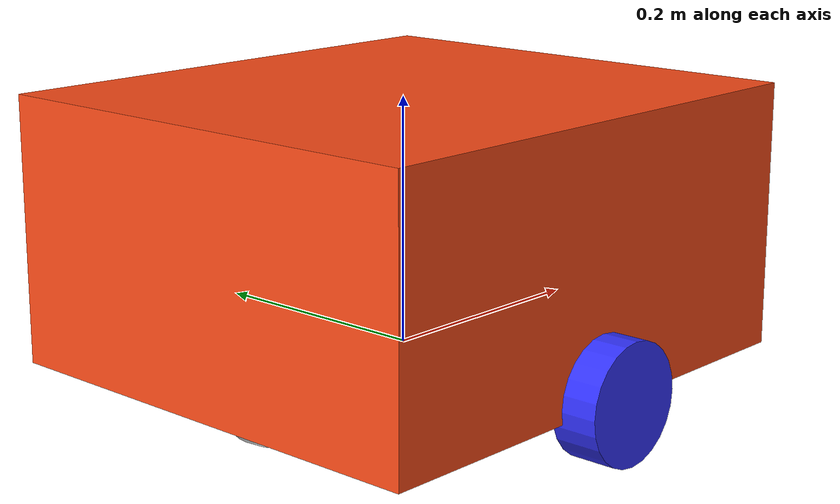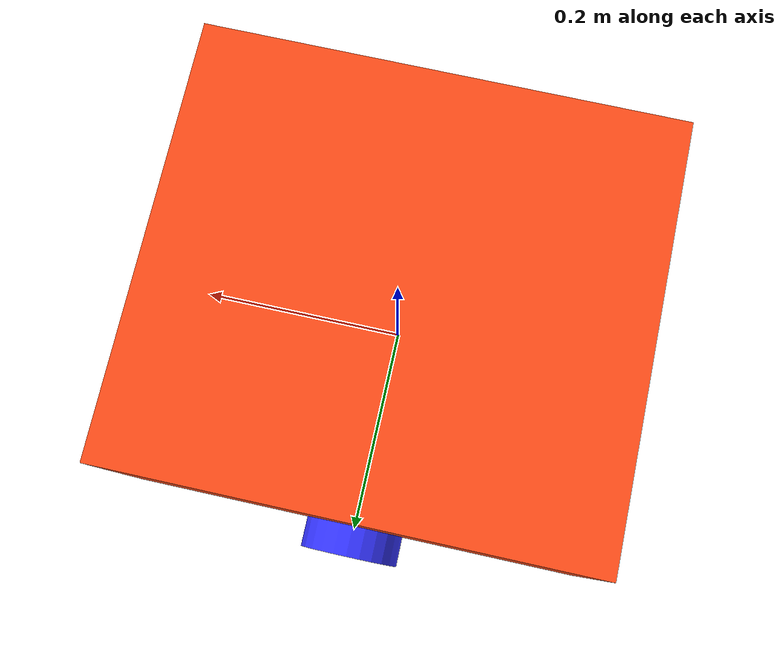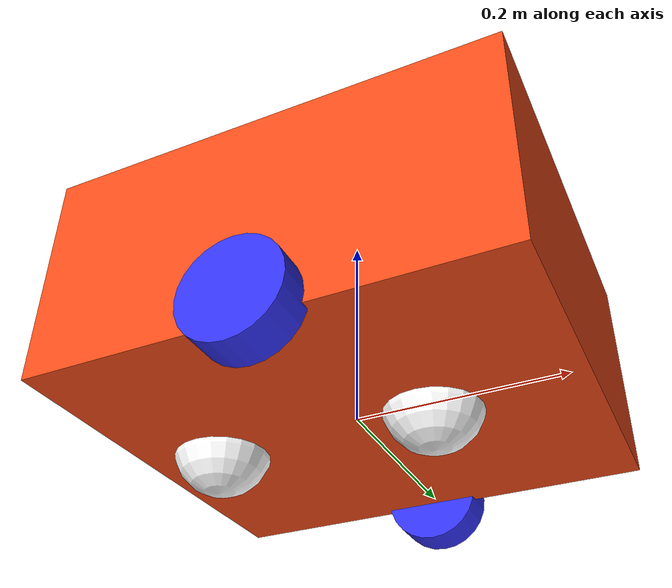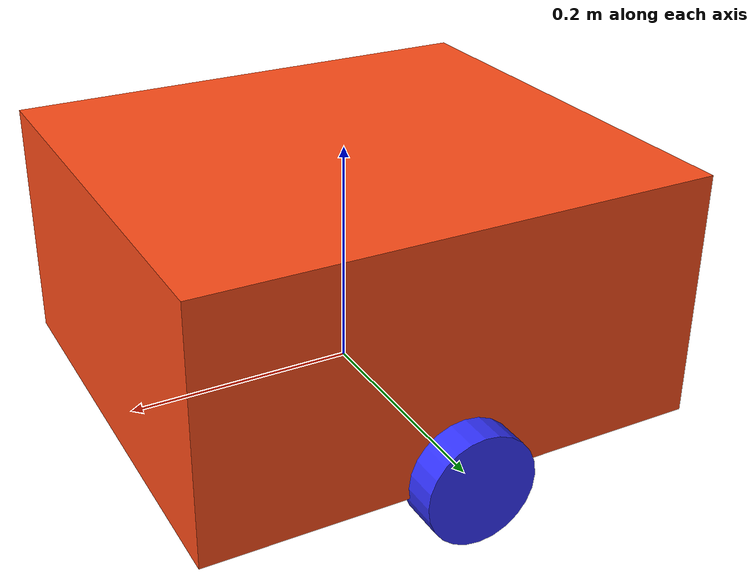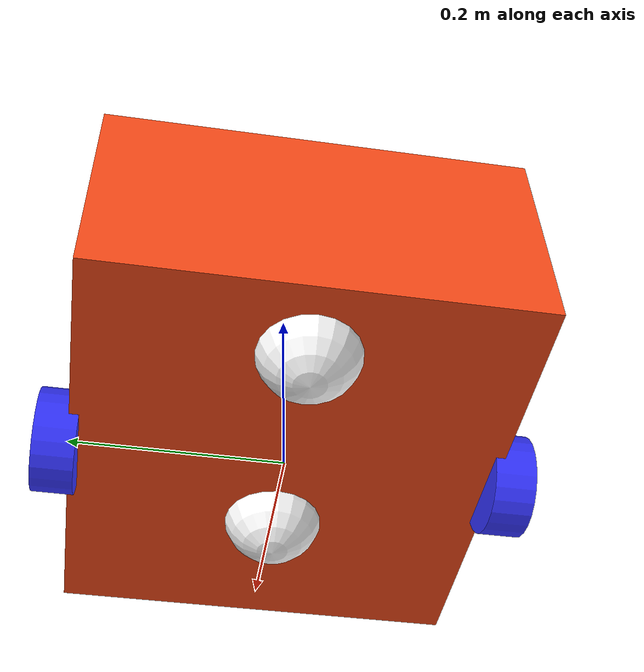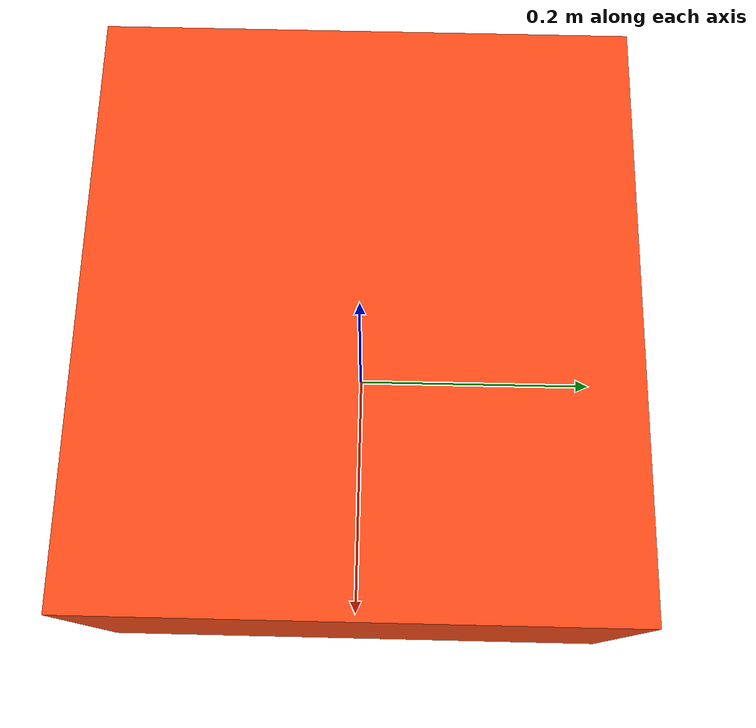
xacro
<?xml version="1.0"?>
<robot xmlns:xacro="http://www.ros.org/wiki/xacro" >

    <xacro:include filename="inertial_macros.xacro"/>

    <xacro:property name="chassis_length" value="0.439166"/>
    <xacro:property name="chassis_width" value="0.396748"/>
    <xacro:property name="chassis_height" value="0.2159"/>
    <xacro:property name="chassis_mass" value="13.6078"/>
    <xacro:property name="wheel_radius" value="0.048"/>
    <xacro:property name="wheel_thickness" value="0.038"/>
    <xacro:property name="wheel_mass" value="0.207"/>
    <xacro:property name="wheel_offset_x" value="${chassis_length/2}"/>
    <xacro:property name="wheel_seperation" value="0.417"/>
    <xacro:property name="wheel_offset_y" value="${wheel_seperation/2}"/>
    <xacro:property name="wheel_offset_z" value="0.01"/>
    <xacro:property name="caster_wheel_radius" value="${wheel_radius}"/>
    <xacro:property name="caster_wheel_mass" value="0.01"/>
    <xacro:property name="caster_wheel_offset_x" value="0.075"/>
    <xacro:property name="caster_wheel_offset_z" value="${wheel_offset_z - wheel_radius + caster_wheel_radius}"/>

    <material name="white">
        <color rgba="1 1 1 1" />
    </material>

    <material name="orange">
        <color rgba="1 0.3 0.1 1"/>
    </material>

    <material name="blue">
        <color rgba="0.2 0.2 1 1"/>
    </material>

    <material name="black">
        <color rgba="0 0 0 1"/>
    </material>

    <material name="red">
        <color rgba="1 0 0 1"/>
    </material>

    <!-- BASE LINK -->

    <link name="base_link">

    </link>

    <!-- BASE_FOOTPRINT LINK -->

    <joint name="base_footprint_joint" type="fixed">
        <parent link="base_link"/>
        <child link="base_footprint"/>
        <origin xyz="0 0 0" rpy="0 0 0"/>
    </joint>

    <link name="base_footprint">
    </link>

    <!-- CHASSIS LINK -->

    <joint name="chassis_joint" type="fixed">
        <parent link="base_link"/>
        <child link="chassis"/>
        <origin xyz="${-wheel_offset_x} 0 ${-wheel_offset_z}"/>
    </joint>

    <link name="chassis">
        <visual>
            <origin xyz="${chassis_length/2} 0 ${chassis_height/2}"/>
            <geometry>
                <box size="${chassis_length} ${chassis_width} ${chassis_height}"/>
            </geometry>
            <material name="orange"/>
        </visual>
        <collision>
            <origin xyz="${chassis_length/2} 0 ${chassis_height/2}"/>
            <geometry>
                <box size="${chassis_length} ${chassis_width} ${chassis_height}"/>
            </geometry>
        </collision>
        <xacro:inertial_box mass="0.5" x="${chassis_length}" y="${chassis_width}" z="${chassis_height}">
            <origin xyz="${chassis_length/2} 0 ${chassis_height/2}" rpy="0 0 0"/>
        </xacro:inertial_box>
    </link>

    <gazebo reference="chassis">
        <material>Gazebo/Orange</material>
    </gazebo>

    <!-- LEFT WHEEL LINK -->

    <joint name="left_wheel_joint" type="continuous">
        <parent link="base_link"/>
        <child link="left_wheel"/>
        <origin xyz="0 ${wheel_offset_y} 0" rpy="-${pi/2} 0 0" />
        <axis xyz="0 0 1"/>
    </joint>

    <link name="left_wheel">
        <visual>
            <geometry>
                <cylinder radius="${wheel_radius}" length="${wheel_thickness}"/>
            </geometry>
            <material name="blue"/>
        </visual>
        <collision>
            <geometry>
                <sphere radius="${wheel_radius}"/>
            </geometry>
        </collision>
        <xacro:inertial_cylinder mass="${wheel_mass}" length="${wheel_thickness}" radius="${wheel_radius}">
            <origin xyz="0 0 0" rpy="0 0 0"/>
        </xacro:inertial_cylinder>
    </link>

    <gazebo reference="left_wheel">
        <material>Gazebo/Blue</material>
    </gazebo>

    <!-- RIGHT WHEEL LINK -->

    <joint name="right_wheel_joint" type="continuous">
        <parent link="base_link"/>
        <child link="right_wheel"/>
        <origin xyz="0 ${-wheel_offset_y} 0" rpy="${pi/2} 0 0" />
        <axis xyz="0 0 -1"/>
    </joint>

    <link name="right_wheel">
        <visual>
            <geometry>
                <cylinder radius="${wheel_radius}" length="${wheel_thickness}"/>
            </geometry>
            <material name="blue"/>
        </visual>
        <collision>
            <geometry>
                <sphere radius="${wheel_radius}"/>
            </geometry>
        </collision>
        <xacro:inertial_cylinder mass="${wheel_mass}" length="${wheel_thickness}" radius="${wheel_radius}">
            <origin xyz="0 0 0" rpy="0 0 0"/>
        </xacro:inertial_cylinder>
    </link>

    <gazebo reference="right_wheel">
        <material>Gazebo/Blue</material>
    </gazebo>

    <!-- CASTER WHEEL LINK -->

    <joint name="caster_wheel_joint" type="fixed">
        <parent link="chassis"/>
        <child link="caster_wheel"/>
        <origin xyz="${caster_wheel_offset_x} 0 ${caster_wheel_offset_z}"/>
    </joint>

    <link name="caster_wheel">
        <visual>
            <geometry>
                <sphere radius="${caster_wheel_radius}"/>
            </geometry>
            <material name="white"/>
        </visual>
        <collision>
            <geometry>
                <sphere radius="${caster_wheel_radius}"/>
            </geometry>
        </collision>
        <xacro:inertial_sphere mass="${caster_wheel_mass}" radius="${caster_wheel_radius}">
            <origin xyz="0 0 0" rpy="0 0 0"/>
        </xacro:inertial_sphere>
    </link>

    <gazebo reference="caster_wheel">
        <material>Gazebo/White</material>
        <mu1 value="0.001"/>
        <mu2 value="0.001"/>
    </gazebo>

    <!-- FRONT CASTER WHEEL LINK -->

    <joint name="front_caster_wheel_joint" type="fixed">
        <parent link="chassis"/>
        <child link="front_caster_wheel"/>
        <origin xyz="${caster_wheel_offset_x + chassis_length/2} 0 ${caster_wheel_offset_z}"/>
    </joint>

    <link name="front_caster_wheel">
        <visual>
            <geometry>
                <sphere radius="${caster_wheel_radius}"/>
            </geometry>
            <material name="white"/>
        </visual>
        <collision>
            <geometry>
                <sphere radius="${caster_wheel_radius}"/>
            </geometry>
        </collision>
        <xacro:inertial_sphere mass="${caster_wheel_mass}" radius="${caster_wheel_radius}">
            <origin xyz="0 0 0" rpy="0 0 0"/>
        </xacro:inertial_sphere>
    </link>

    <gazebo reference="front_caster_wheel">
        <material>Gazebo/White</material>
        <mu1 value="0.001"/>
        <mu2 value="0.001"/>
    </gazebo>

</robot>
